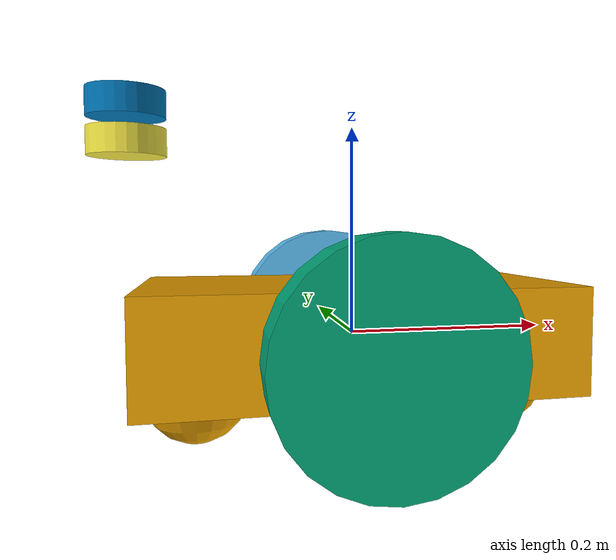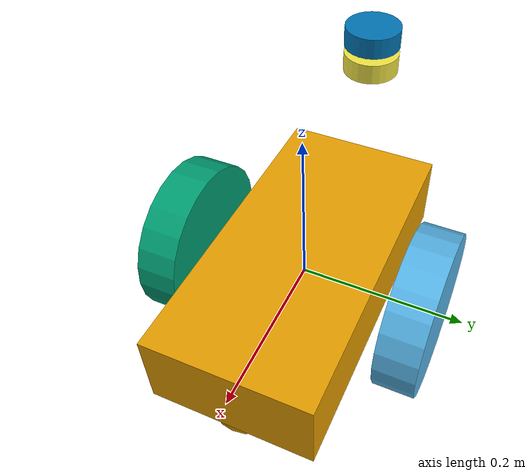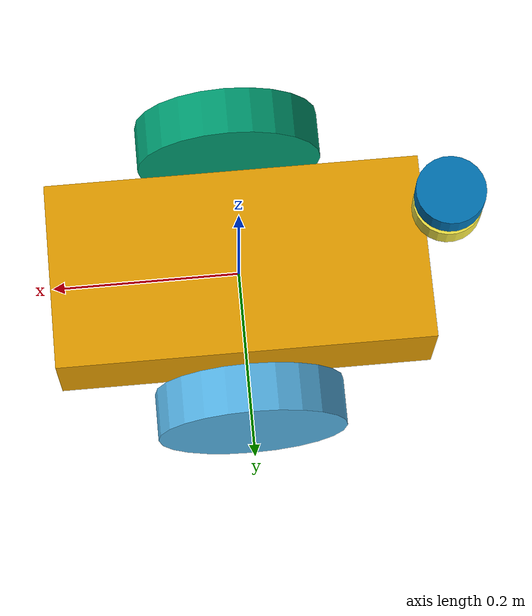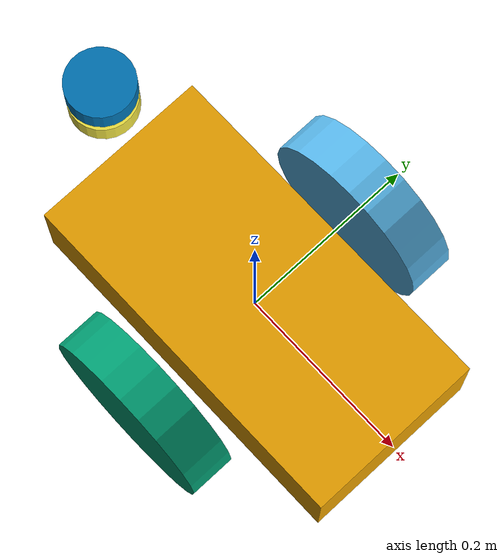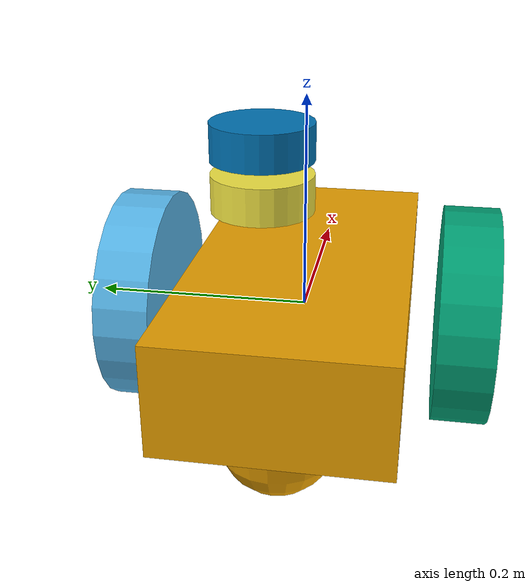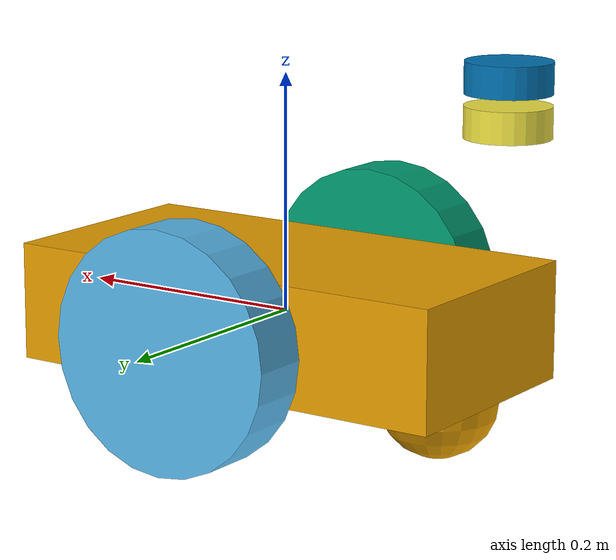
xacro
<?xml version="1.0"?>
<robot name="test_diff_drive" xmlns:xacro="http://ros.org/wiki/xacro">

    <xacro:include filename="$(find ghost_sim)/urdf/test_tank_sim_base.xacro"/>
    <xacro:include filename="$(find ghost_sim)/urdf/macros/sensor_macros.xacro"/>

    <xacro:lidar_macro link_name="lidar_link" topic_name="scan"></xacro:lidar_macro>
    <xacro:imu_macro parent_link="base_link" topic_name="imu"></xacro:imu_macro>

    <gazebo>
        <plugin name="gazebo_ros_diff_drive" filename="libgazebo_ros_diff_drive.so">
            <!-- Update rate in Hz -->
            <update_rate>30.0</update_rate>

            <!-- wheels -->
            <left_joint>left_wheel_hinge</left_joint>

            <right_joint>right_wheel_hinge</right_joint>

            <!-- kinematics -->
            <wheel_separation>0.3</wheel_separation>
            <wheel_diameter>0.07</wheel_diameter>

            <!-- limits -->
            <max_wheel_torque>20</max_wheel_torque>
            <max_wheel_acceleration>1.0</max_wheel_acceleration>

            <!-- input -->
            <command_topic>cmd_vel</command_topic>

            <!-- output: odometrySource 0 for ENCODER 1 for WORLD -->
            <odometrySource>1</odometrySource>
            <publish_odom>true</publish_odom>
            <publish_odom_tf>false</publish_odom_tf>
            <publish_wheel_tf>true</publish_wheel_tf>

            <odometry_topic>sensors/wheel_odom</odometry_topic>
            <odometry_frame>odom</odometry_frame>
            <robot_base_frame>base_link</robot_base_frame>
        </plugin>
    </gazebo>
</robot>

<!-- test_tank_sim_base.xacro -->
<robot name="test_diff_drive" xmlns:xacro="http://ros.org/wiki/xacro">
    <xacro:property name='d2r' value="${3.14159/180}"/>

    <link name='base_link'>
        <pose>0 0 0.1 0 0 0</pose>

        <inertial>
            <mass value="15.0"/>
            <origin xyz="0.0 0 0.1" rpy=" 0 0 0"/>
            <inertia
                ixx="0.1" ixy="0" ixz="0"
                iyy="0.1" iyz="0"
                izz="0.1"/>
        </inertial>

        <collision name='collision'>
            <geometry>
                <box size=".4 .2 .1"/>
            </geometry>
        </collision>

        <visual name='chassis_visual'>
            <origin xyz="0 0 0" rpy=" 0 0 0"/>
            <geometry>
                <box size=".4 .2 .1"/>
            </geometry>
        </visual>

        <collision name='caster_collision'>
            <origin xyz="-0.15 0 -0.05" rpy=" 0 0 0"/>
            <geometry>
                <sphere radius="0.05"/>
            </geometry>
            <surface>
                <friction>
                <ode>
                    <mu>0</mu>
                    <mu2>0</mu2>
                    <slip1>1.0</slip1>
                    <slip2>1.0</slip2>
                </ode>
                </friction>
            </surface>
        </collision>

        <visual name='caster_visual'>
            <origin xyz="-0.15 0 -0.05" rpy=" 0 0 0"/>
            <geometry>
                <sphere radius="0.05"/>
            </geometry>
        </visual>

        <collision name='caster_front_collision'>
            <origin xyz="0.15 0 -0.05" rpy=" 0 0 0"/>
            <geometry>
                <sphere radius="0.05"/>
            </geometry>
            <surface>
                <friction>
                <ode>
                    <mu>0</mu>
                    <mu2>0</mu2>
                    <slip1>1.0</slip1>
                    <slip2>1.0</slip2>
                </ode>
                </friction>
            </surface>
        </collision>

        <visual name='caster_front_visual'>
            <origin xyz="0.15 0 -0.05" rpy=" 0 0 0"/>
            <geometry>
                <sphere radius="0.05"/>
            </geometry>
        </visual>
    </link>

  <link name="left_wheel">
    <!--origin xyz="0.1 0.13 0.1" rpy="0 1.5707 1.5707"/-->
    <collision name="collision">
      <origin xyz="0 0 0" rpy="0 1.5707 1.5707"/>
      <geometry>
        <cylinder radius="0.1" length="0.05"/>
      </geometry>
    </collision>
    <visual name="left_wheel_visual">
      <origin xyz="0 0 0" rpy="0 1.5707 1.5707"/>
      <geometry>
        <cylinder radius="0.1" length="0.05"/>
      </geometry>
    </visual>
    <inertial>
      <origin xyz="0 0 0" rpy="0 1.5707 1.5707"/>
      <mass value="5"/>
      <inertia
        ixx=".1" ixy="0.0" ixz="0.0"
        iyy=".1" iyz="0.0"
        izz=".1"/>
    </inertial>
  </link>

  <link name="right_wheel">
    <!--origin xyz="0.1 -0.13 0.1" rpy="0 1.5707 1.5707"/-->
    <collision name="collision">
      <origin xyz="0 0 0" rpy="0 1.5707 1.5707"/>
      <geometry>
        <cylinder radius="0.1" length="0.05"/>
      </geometry>
    </collision>
    <visual name="right_wheel_visual">
      <origin xyz="0 0 0" rpy="0 1.5707 1.5707"/>
      <geometry>
        <cylinder radius="0.1" length="0.05"/>
      </geometry>
    </visual>
    <inertial>
      <origin xyz="0 0 0" rpy="0 1.5707 1.5707"/>
      <mass value="5"/>
      <inertia
        ixx=".1" ixy="0.0" ixz="0.0"
        iyy=".1" iyz="0.0"
        izz=".1"/>
    </inertial>
  </link>

  <joint type="continuous" name="left_wheel_hinge">
    <origin xyz="0 0.15 0" rpy="0 0 0"/>
    <!--origin xyz="0.1 0.13 0" rpy="0 1.5707 1.5707"/-->
    <child link="left_wheel"/>
    <parent link="base_link"/>
    <axis xyz="0 1 0" rpy="0 0 0"/>
    <limit effort="10000" velocity="1000"/>
    <joint_properties damping="1.0" friction="1.0"/>
  </joint>

  <joint type="continuous" name="right_wheel_hinge">
    <origin xyz="0 -0.15 0" rpy="0 0 0"/>
    <!--origin xyz="0.1 -0.13 0" rpy="0 1.5707 1.5707"/-->
    <child link="right_wheel"/>
    <parent link="base_link"/>
    <axis xyz="0 1 0" rpy="0 0 0"/>
    <limit effort="10000" velocity="1000"/>
    <joint_properties damping="1.0" friction="1.0"/>
  </joint>

  <!-- Sensors -->
    <link name="lidar_link">
        <inertial>
            <origin xyz="0.0 0 0.0" rpy="0 0 0"/>
            <mass value="0.125"/>
            <inertia ixx="0.001"  ixy="0"  ixz="0" iyy="0.001" iyz="0" izz="0.001" />
        </inertial>

        <visual>
            <origin xyz="0 0 0" rpy="0 0 0"/>
            <geometry>
            <cylinder radius="${0.06985/2}" length="0.0254"/>
            </geometry>
        </visual>
    </link>

    <joint name="lidar_joint" type="fixed">
        <parent link="base_link"/>
        <child link="lidar_link"/>
        <origin xyz="-0.209 0 0.180" rpy="0 0 ${67.562*d2r}"/>
    </joint>

    <link name="imu_link">
        <inertial>
            <origin xyz="0.0 0 0.0" rpy="0 0 0"/>
            <mass value="0.125"/>
            <inertia ixx="0.001"  ixy="0"  ixz="0" iyy="0.001" iyz="0" izz="0.001" />
        </inertial>

        <visual>
            <origin xyz="0 0 0" rpy="0 0 0"/>
            <geometry>
            <cylinder radius="${0.06985/2}" length="0.0254"/>
            </geometry>
        </visual>
    </link>

    <joint name="imu_joint" type="fixed">
        <parent link="base_link"/>
        <child link="imu_link"/>
        <origin xyz="-0.209 0 0.2145" rpy="0 0 ${67.562*d2r}"/>
    </joint>

  </robot>
